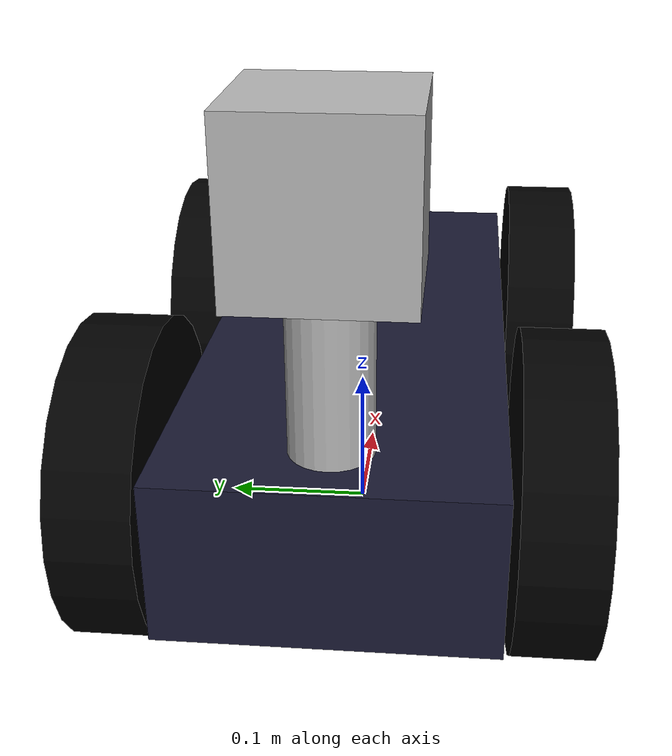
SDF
<?xml version='1.0'?>
<sdf version='1.4'>
  <model name="my_robot">
    <static>false</static>

    <link name='chassis'>
      <pose>0 0 .1 0 0 0</pose>
      <collision name='collision'>
        <geometry>
          <box>
            <size>.5 .2 .1</size>
          </box>
        </geometry>
      </collision>

      <visual name='visual'>
        <geometry>
          <box>
            <size>.5 .2 .1</size>
          </box>
        </geometry>
        <material>
          <ambient>0.1 0.1 0.1 1</ambient>
          <diffuse>0.1 0.1 0.2 1</diffuse>
          <specular>0 0 0 0</specular>
          <emissive>0 0 0 1</emissive>
        </material>
      </visual>
    </link>

    <link name="front_left_wheel">
      <pose>0.15 0.13 0.1 0 1.5707 1.5707</pose>
      <collision name="collision">
        <geometry>
          <cylinder>
            <radius>.1</radius>
            <length>.05</length>
          </cylinder>
        </geometry>
      </collision>
      <visual name="visual">
        <geometry>
          <cylinder>
            <radius>.1</radius>
            <length>.05</length>
          </cylinder>
        </geometry>
        <material>
          <ambient>0 0 0 1</ambient>
          <diffuse>0 0 0 1</diffuse>
          <specular>0 0 0 0</specular>
          <emissive>0 1 0 1</emissive>
        </material>
      </visual>
    </link>

    <link name="front_right_wheel">
      <pose>0.15 -0.13 0.1 0 1.5707 1.5707</pose>
      <collision name="collision">
        <geometry>
          <cylinder>
            <radius>.1</radius>
            <length>.05</length>
          </cylinder>
        </geometry>
      </collision>
      <visual name="visual">
        <geometry>
          <cylinder>
            <radius>.1</radius>
            <length>.05</length>
          </cylinder>
        </geometry>
        <material>
          <ambient>0 0 0 1</ambient>
          <diffuse>0 0 0 1</diffuse>
          <specular>0 0 0 0</specular>
          <emissive>0 1 0 1</emissive>
        </material>
      </visual>
    </link>

    <link name="back_left_wheel">
      <pose>-0.15 0.13 0.1 0 1.5707 1.5707</pose>
      <collision name="collision">
        <geometry>
          <cylinder>
            <radius>.1</radius>
            <length>.05</length>
          </cylinder>
        </geometry>
      </collision>
      <visual name="visual">
        <geometry>
          <cylinder>
            <radius>.1</radius>
            <length>.05</length>
          </cylinder>
        </geometry>
        <material>
          <ambient>0 0 0 1</ambient>
          <diffuse>0 0 0 1</diffuse>
          <specular>0 0 0 0</specular>
          <emissive>0 1 0 1</emissive>
        </material>
      </visual>

    </link>

    <link name="back_right_wheel">
      <pose>-0.15 -0.13 0.1 0 1.5707 1.5707</pose>
      <collision name="collision">
        <geometry>
          <cylinder>
            <radius>.1</radius>
            <length>.05</length>
          </cylinder>
        </geometry>
      </collision>
      <visual name="visual">
        <geometry>
          <cylinder>
            <radius>.1</radius>
            <length>.05</length>
          </cylinder>
        </geometry>
        <material> <!-- LED material -->
          <ambient>0 0 0 1</ambient>
          <diffuse>0 0 0 1</diffuse>
          <specular>0 0 0 0</specular>
          <emissive>0 1 0 1</emissive>
        </material> <!-- End LED material -->
      </visual>
    </link>

    <link name="sensor_holder">
      <pose>-0.2 0 0.2 0 0 0</pose>
      <collision name="collision">
        <geometry>
          <cylinder>
            <radius>.05</radius>
            <length>.1</length>
          </cylinder>
        </geometry>
      </collision>
      <visual name="visual">
        <geometry>
          <cylinder>
            <radius>.025</radius>
            <length>.1</length>
          </cylinder>
        </geometry>
      </visual>
    </link>

    <include>
      <uri>model://camera</uri>
      <pose>-0.2 0 0.3 0 0 0</pose>
    </include>
    <joint name="camera_joint" type="fixed">
      <child>camera::link</child>
      <parent>sensor_holder</parent>
    </joint>

    <joint type="revolute" name="sensor_holder_chasis_joint">
      <pose>0 0 0 0 0 0</pose>
      <child>sensor_holder</child>
      <parent>chassis</parent>
      <axis>
        <xyz>0 0 1</xyz>
      </axis>
    </joint>

    <joint type="revolute" name="front_left_wheel_joint">
      <pose>0 0 -0.03 0 0 0</pose>
      <child>front_left_wheel</child>
      <parent>chassis</parent>
      <axis>
        <xyz>0 1 0</xyz>
      </axis>
    </joint>

    <joint type="revolute" name="front_right_wheel_joint">
      <pose>0 0 0.03 0 0 0</pose>
      <child>front_right_wheel</child>
      <parent>chassis</parent>
      <axis>
        <xyz>0 1 0</xyz>
      </axis>
    </joint>

    <joint type="revolute" name="back_left_wheel_joint">
      <pose>0 0 -0.03 0 0 0</pose>
      <child>back_left_wheel</child>
      <parent>chassis</parent>
      <axis>
        <xyz>0 1 0</xyz>
      </axis>
    </joint>

    <joint type="revolute" name="back_right_wheel_joint">
      <pose>0 0 0.03 0 0 0</pose>
      <child>back_right_wheel</child>
      <parent>chassis</parent>
      <axis>
        <xyz>0 1 0</xyz>
      </axis>
    </joint>

  </model>
</sdf>

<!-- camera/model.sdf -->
<sdf version="1.5">
  <model name="camera">
    <pose>0 0 0.05 0 0 0</pose>
    <link name="link">
      <inertial>
        <mass>0.1</mass>
        <inertia>
          <ixx>0.000166667</ixx>
          <iyy>0.000166667</iyy>
          <izz>0.000166667</izz>
        </inertia>
      </inertial>
      <collision name="collision">
        <geometry>
          <box>
            <size>0.1 0.1 0.1</size>
          </box>
        </geometry>
      </collision>
      <visual name="visual">
        <geometry>
          <box>
            <size>0.1 0.1 0.1</size>
          </box>
        </geometry>
      </visual>
      <sensor name="camera" type="camera">
        <camera>
          <horizontal_fov>1.047</horizontal_fov>
          <image>
            <width>320</width>
            <height>240</height>
          </image>
          <clip>
            <near>0.1</near>
            <far>100</far>
          </clip>
        </camera>
        <always_on>1</always_on>
        <update_rate>30</update_rate>
        <visualize>true</visualize>
      </sensor>
    </link>
  </model>
</sdf>
